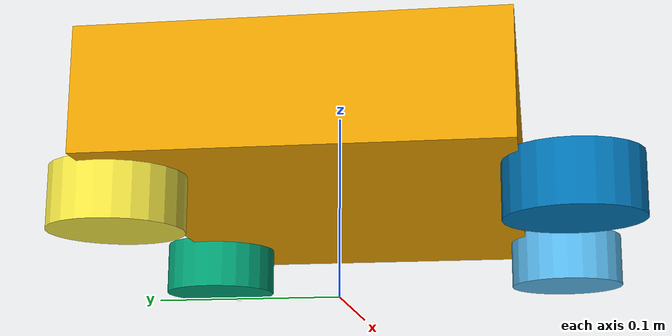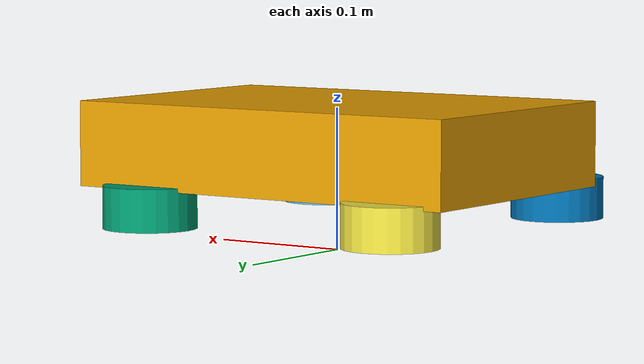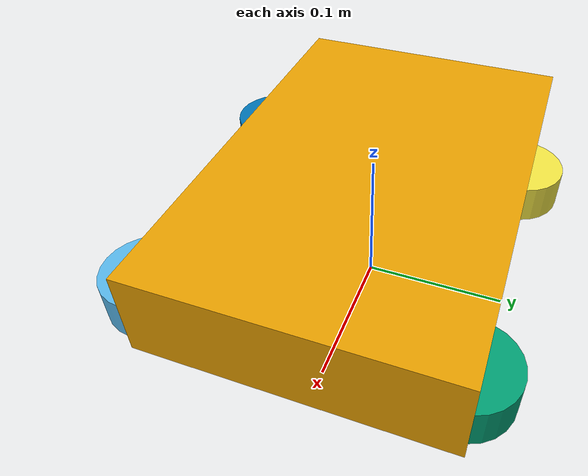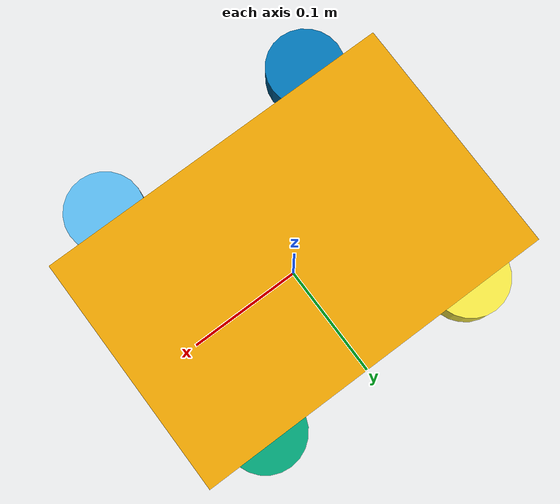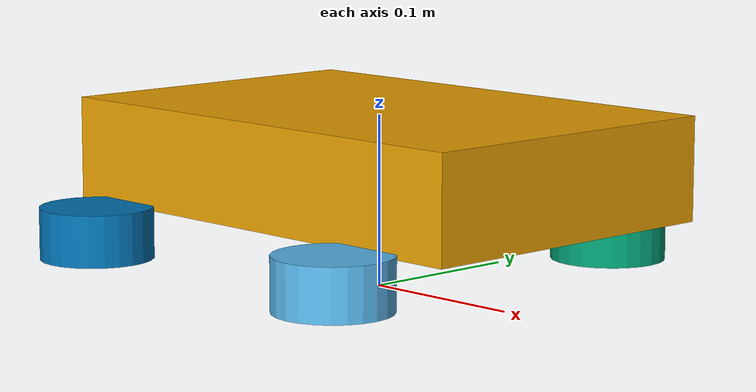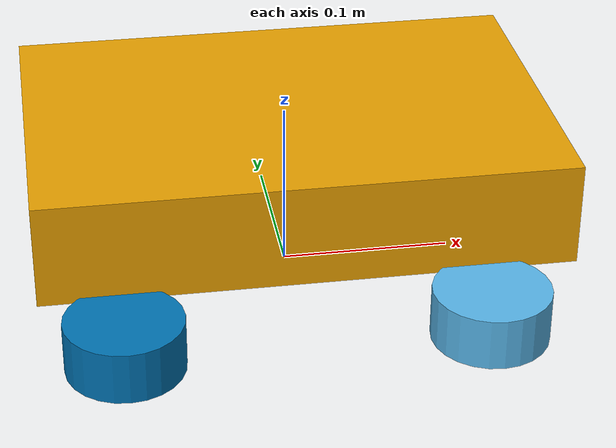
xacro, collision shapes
<?xml version="1.0"?>
<robot name="hai_robot" xmlns:xacro="http://www.ros.org/wiki/xacro">

  <!-- BASE LINK -->
  <link name="base_link">
    <inertial>
      <origin xyz="0 0 0.075" rpy="0 0 0"/>
      <mass value="8.0"/>
      <inertia ixx="0.08" iyy="0.12" izz="0.18" ixy="0.0" ixz="0.0" iyz="0.0"/>
    </inertial>

    <visual>
      <geometry>
        <mesh filename="package://mohd_shan/meshes/base_link.stl" scale="0.001 0.001 0.001"/>
      </geometry>
    </visual>

    <collision>
      <origin xyz="0 0 0.075"/>
      <geometry>
        <box size="0.30 0.20 0.06"/>
      </geometry>
    </collision>
  </link>

  <!-- ========= WHEELS ========= -->

  <!-- FRONT RIGHT -->
  <link name="Link_FR">
    <inertial>
      <mass value="0.35"/>
      <inertia ixx="0.001" iyy="0.001" izz="0.001"/>
    </inertial>

    <visual>
      <origin xyz="-0.095294 0.124382 -0.009657"/>
      <geometry>
        <mesh filename="package://mohd_shan/meshes/wheel_FR_1.stl" scale="0.001 0.001 0.001"/>
      </geometry>
    </visual>

    <!-- FIXED: collision aligned -->
    <collision>
      <geometry>
        <cylinder radius="0.033" length="0.03"/>
      </geometry>
    </collision>
  </link>

  <joint name="joint_FR" type="continuous">
    <parent link="base_link"/>
    <child link="Link_FR"/>
    <origin xyz="0.095294 -0.124382 0.033"/>
    <axis xyz="0 -1 0"/>
    <dynamics damping="1.0" friction="0.2"/>
  </joint>

  <!-- FRONT LEFT -->
  <link name="Link_FL">
    <inertial>
      <mass value="0.35"/>
      <inertia ixx="0.001" iyy="0.001" izz="0.001"/>
    </inertial>

    <visual>
      <origin xyz="-0.095294 -0.090848 -0.009657"/>
      <geometry>
        <mesh filename="package://mohd_shan/meshes/wheel_FL_1.stl" scale="0.001 0.001 0.001"/>
      </geometry>
    </visual>

    <collision>
      <geometry>
        <cylinder radius="0.033" length="0.03"/>
      </geometry>
    </collision>
  </link>

  <joint name="joint_FL" type="continuous">
    <parent link="base_link"/>
    <child link="Link_FL"/>
    <origin xyz="0.095294 0.090848 0.033"/>
    <axis xyz="0 -1 0"/>
    <dynamics damping="1.0" friction="0.2"/>
  </joint>

  <!-- BACK LEFT -->
  <link name="Link_BL">
    <inertial>
      <mass value="0.35"/>
      <inertia ixx="0.001" iyy="0.001" izz="0.001"/>
    </inertial>

    <visual>
      <origin xyz="0.105062 -0.090848 -0.009657"/>
      <geometry>
        <mesh filename="package://mohd_shan/meshes/wheel_BL_1.stl" scale="0.001 0.001 0.001"/>
      </geometry>
    </visual>

    <collision>
      <geometry>
        <cylinder radius="0.033" length="0.03"/>
      </geometry>
    </collision>
  </link>

  <joint name="joint_BL" type="continuous">
    <parent link="base_link"/>
    <child link="Link_BL"/>
    <origin xyz="-0.105062 0.090848 0.033"/>
    <axis xyz="0 -1 0"/>
    <dynamics damping="1.0" friction="0.2"/>
  </joint>

  <!-- BACK RIGHT -->
  <link name="Link_BR">
    <inertial>
      <mass value="0.35"/>
      <inertia ixx="0.001" iyy="0.001" izz="0.001"/>
    </inertial>

    <visual>
      <origin xyz="0.105062 0.124382 -0.009657"/>
      <geometry>
        <mesh filename="package://mohd_shan/meshes/wheel_BR_1.stl" scale="0.001 0.001 0.001"/>
      </geometry>
    </visual>

    <collision>
      <geometry>
        <cylinder radius="0.033" length="0.03"/>
      </geometry>
    </collision>
  </link>

  <joint name="joint_BR" type="continuous">
    <parent link="base_link"/>
    <child link="Link_BR"/>
    <origin xyz="-0.105062 -0.124382 0.033"/>
    <axis xyz="0 -1 0"/>
    <dynamics damping="1.0" friction="0.2"/>
  </joint>

</robot>
